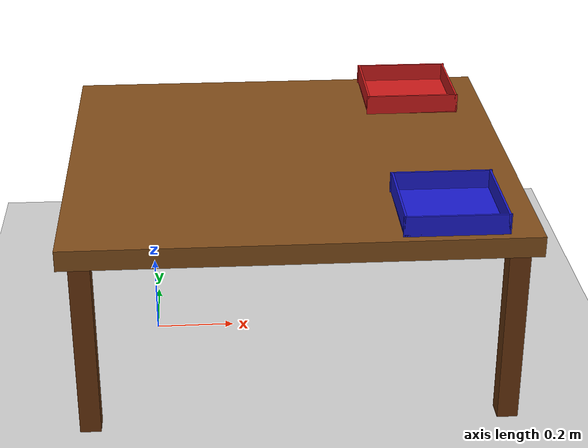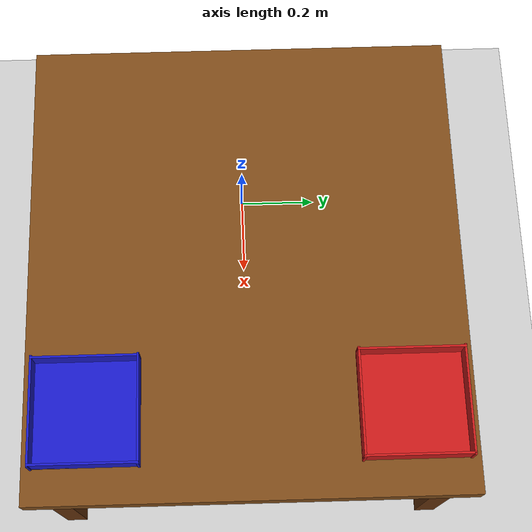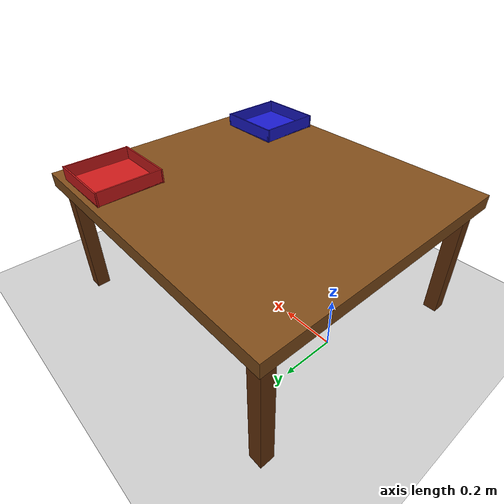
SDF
<?xml version="1.0"?>
<sdf version="1.8">
  <world name="sorting_cell">

    <!-- physics type = ignored could have prevented the gripper instability issue as it would have default to
    dart-->
    <!-- Readymade world already used bullet featherstone and it was a blunder not to change it to
    dart -->
    <!-- refer /sorting_arm_ws/docs/rca/gripper-grasp-instability.md-->

    <physics name="1ms" type="dart">
      <max_step_size>0.001</max_step_size>
      <real_time_factor>1.0</real_time_factor>
    </physics>

    <plugin filename="gz-sim-physics-system" name="gz::sim::systems::Physics" />
    <plugin filename="gz-sim-user-commands-system" name="gz::sim::systems::UserCommands" />
    <plugin filename="gz-sim-scene-broadcaster-system" name="gz::sim::systems::SceneBroadcaster" />
    <plugin filename="gz-sim-contact-system" name="gz::sim::systems::Contact" />
    <plugin filename="gz-sim-sensors-system" name="gz::sim::systems::Sensors">
      <render_engine>ogre2</render_engine>
    </plugin>

    <light name="sun" type="directional">
      <cast_shadows>true</cast_shadows>
      <pose>0 0 10 0 0 0</pose>
      <diffuse>0.8 0.8 0.8 1</diffuse>
      <specular>0.2 0.2 0.2 1</specular>
      <direction>-0.5 -1 -1</direction>
    </light>

    <model name="ground_plane">
      <static>true</static>
      <pose>0 0 0 0 0 0</pose>
      <link name="ground_link">
        <collision name="ground_collision">
          <geometry>
            <plane>
              <size>100 100</size>
              <normal>0 0 1</normal>
            </plane>
          </geometry>
        </collision>
        <visual name="ground_visual">
          <geometry>
            <plane>
              <size>100 100</size>
              <normal>0 0 1</normal>
            </plane>
          </geometry>
          <material>
            <ambient>0.8 0.8 0.8 1</ambient>
            <diffuse>0.8 0.8 0.8 1</diffuse>
          </material>
        </visual>
      </link>
    </model>

    <model name="table">
      <static>true</static>
      <pose>0.35 0 0.505 0 0 0</pose>
      <link name="table_link">
        <collision name="top_collision">
          <pose>0 0 -0.030 0 0 0</pose>
          <geometry>
            <box>
              <size>1.10 1.00 0.05</size>
            </box>
          </geometry>
        </collision>
        <visual name="top_visual">
          <pose>0 0 -0.030 0 0 0</pose>
          <geometry>
            <box>
              <size>1.10 1.00 0.05</size>
            </box>
          </geometry>
          <material>
            <ambient>0.5 0.3 0.1 1</ambient>
            <diffuse>0.5 0.3 0.1 1</diffuse>
          </material>
        </visual>

        <collision name="leg_fl_collision">
          <pose>0.50 0.45 -0.280 0 0 0</pose>
          <geometry>
            <box>
              <size>0.05 0.05 0.45</size>
            </box>
          </geometry>
        </collision>
        <visual name="leg_fl_visual">
          <pose>0.50 0.45 -0.280 0 0 0</pose>
          <geometry>
            <box>
              <size>0.05 0.05 0.45</size>
            </box>
          </geometry>
          <material>
            <ambient>0.4 0.2 0.05 1</ambient>
            <diffuse>0.4 0.2 0.05 1</diffuse>
          </material>
        </visual>

        <collision name="leg_fr_collision">
          <pose>0.50 -0.45 -0.280 0 0 0</pose>
          <geometry>
            <box>
              <size>0.05 0.05 0.45</size>
            </box>
          </geometry>
        </collision>
        <visual name="leg_fr_visual">
          <pose>0.50 -0.45 -0.280 0 0 0</pose>
          <geometry>
            <box>
              <size>0.05 0.05 0.45</size>
            </box>
          </geometry>
          <material>
            <ambient>0.4 0.2 0.05 1</ambient>
            <diffuse>0.4 0.2 0.05 1</diffuse>
          </material>
        </visual>

        <collision name="leg_bl_collision">
          <pose>-0.50 0.45 -0.280 0 0 0</pose>
          <geometry>
            <box>
              <size>0.05 0.05 0.45</size>
            </box>
          </geometry>
        </collision>
        <visual name="leg_bl_visual">
          <pose>-0.50 0.45 -0.280 0 0 0</pose>
          <geometry>
            <box>
              <size>0.05 0.05 0.45</size>
            </box>
          </geometry>
          <material>
            <ambient>0.4 0.2 0.05 1</ambient>
            <diffuse>0.4 0.2 0.05 1</diffuse>
          </material>
        </visual>

        <collision name="leg_br_collision">
          <pose>-0.50 -0.45 -0.280 0 0 0</pose>
          <geometry>
            <box>
              <size>0.05 0.05 0.45</size>
            </box>
          </geometry>
        </collision>
        <visual name="leg_br_visual">
          <pose>-0.50 -0.45 -0.280 0 0 0</pose>
          <geometry>
            <box>
              <size>0.05 0.05 0.45</size>
            </box>
          </geometry>
          <material>
            <ambient>0.4 0.2 0.05 1</ambient>
            <diffuse>0.4 0.2 0.05 1</diffuse>
          </material>
        </visual>
      </link>
    </model>

    <!-- Keep these fixed fixtures identical to SceneManager's MoveIt collision objects. -->
    <model name="red_tray">
      <static>true</static>
      <pose>0.70 0.36 0.500 0 0 0</pose>
      <link name="tray_link">
        <collision name="floor_collision">
          <pose>0 0 0.0025 0 0 0</pose>
          <geometry>
            <box>
              <size>0.24 0.24 0.005</size>
            </box>
          </geometry>
        </collision>
        <visual name="floor_visual">
          <pose>0 0 0.0025 0 0 0</pose>
          <geometry>
            <box>
              <size>0.24 0.24 0.005</size>
            </box>
          </geometry>
          <material>
            <ambient>0.8 0.1 0.1 1</ambient>
            <diffuse>0.8 0.1 0.1 1</diffuse>
          </material>
        </visual>

        <collision name="wall_front_collision">
          <pose>0.1175 0 0.025 0 0 0</pose>
          <geometry>
            <box>
              <size>0.005 0.24 0.05</size>
            </box>
          </geometry>
        </collision>
        <visual name="wall_front_visual">
          <pose>0.1175 0 0.025 0 0 0</pose>
          <geometry>
            <box>
              <size>0.005 0.24 0.05</size>
            </box>
          </geometry>
          <material>
            <ambient>0.8 0.1 0.1 1</ambient>
            <diffuse>0.8 0.1 0.1 1</diffuse>
          </material>
        </visual>

        <collision name="wall_back_collision">
          <pose>-0.1175 0 0.025 0 0 0</pose>
          <geometry>
            <box>
              <size>0.005 0.24 0.05</size>
            </box>
          </geometry>
        </collision>
        <visual name="wall_back_visual">
          <pose>-0.1175 0 0.025 0 0 0</pose>
          <geometry>
            <box>
              <size>0.005 0.24 0.05</size>
            </box>
          </geometry>
          <material>
            <ambient>0.8 0.1 0.1 1</ambient>
            <diffuse>0.8 0.1 0.1 1</diffuse>
          </material>
        </visual>

        <collision name="wall_left_collision">
          <pose>0 0.1175 0.025 0 0 0</pose>
          <geometry>
            <box>
              <size>0.245 0.005 0.05</size>
            </box>
          </geometry>
        </collision>
        <visual name="wall_left_visual">
          <pose>0 0.1175 0.025 0 0 0</pose>
          <geometry>
            <box>
              <size>0.245 0.005 0.05</size>
            </box>
          </geometry>
          <material>
            <ambient>0.8 0.1 0.1 1</ambient>
            <diffuse>0.8 0.1 0.1 1</diffuse>
          </material>
        </visual>

        <collision name="wall_right_collision">
          <pose>0 -0.1175 0.025 0 0 0</pose>
          <geometry>
            <box>
              <size>0.245 0.005 0.05</size>
            </box>
          </geometry>
        </collision>
        <visual name="wall_right_visual">
          <pose>0 -0.1175 0.025 0 0 0</pose>
          <geometry>
            <box>
              <size>0.245 0.005 0.05</size>
            </box>
          </geometry>
          <material>
            <ambient>0.8 0.1 0.1 1</ambient>
            <diffuse>0.8 0.1 0.1 1</diffuse>
          </material>
        </visual>
      </link>
    </model>

    <model name="blue_tray">
      <static>true</static>
      <pose>0.70 -0.36 0.500 0 0 0</pose>
      <link name="tray_link">
        <collision name="floor_collision">
          <pose>0 0 0.0025 0 0 0</pose>
          <geometry>
            <box>
              <size>0.24 0.24 0.005</size>
            </box>
          </geometry>
        </collision>
        <visual name="floor_visual">
          <pose>0 0 0.0025 0 0 0</pose>
          <geometry>
            <box>
              <size>0.24 0.24 0.005</size>
            </box>
          </geometry>
          <material>
            <ambient>0.1 0.1 0.8 1</ambient>
            <diffuse>0.1 0.1 0.8 1</diffuse>
          </material>
        </visual>

        <collision name="wall_front_collision">
          <pose>0.1175 0 0.025 0 0 0</pose>
          <geometry>
            <box>
              <size>0.005 0.24 0.05</size>
            </box>
          </geometry>
        </collision>
        <visual name="wall_front_visual">
          <pose>0.1175 0 0.025 0 0 0</pose>
          <geometry>
            <box>
              <size>0.005 0.24 0.05</size>
            </box>
          </geometry>
          <material>
            <ambient>0.1 0.1 0.8 1</ambient>
            <diffuse>0.1 0.1 0.8 1</diffuse>
          </material>
        </visual>

        <collision name="wall_back_collision">
          <pose>-0.1175 0 0.025 0 0 0</pose>
          <geometry>
            <box>
              <size>0.005 0.24 0.05</size>
            </box>
          </geometry>
        </collision>
        <visual name="wall_back_visual">
          <pose>-0.1175 0 0.025 0 0 0</pose>
          <geometry>
            <box>
              <size>0.005 0.24 0.05</size>
            </box>
          </geometry>
          <material>
            <ambient>0.1 0.1 0.8 1</ambient>
            <diffuse>0.1 0.1 0.8 1</diffuse>
          </material>
        </visual>

        <collision name="wall_left_collision">
          <pose>0 0.1175 0.025 0 0 0</pose>
          <geometry>
            <box>
              <size>0.245 0.005 0.05</size>
            </box>
          </geometry>
        </collision>
        <visual name="wall_left_visual">
          <pose>0 0.1175 0.025 0 0 0</pose>
          <geometry>
            <box>
              <size>0.245 0.005 0.05</size>
            </box>
          </geometry>
          <material>
            <ambient>0.1 0.1 0.8 1</ambient>
            <diffuse>0.1 0.1 0.8 1</diffuse>
          </material>
        </visual>

        <collision name="wall_right_collision">
          <pose>0 -0.1175 0.025 0 0 0</pose>
          <geometry>
            <box>
              <size>0.245 0.005 0.05</size>
            </box>
          </geometry>
        </collision>
        <visual name="wall_right_visual">
          <pose>0 -0.1175 0.025 0 0 0</pose>
          <geometry>
            <box>
              <size>0.245 0.005 0.05</size>
            </box>
          </geometry>
          <material>
            <ambient>0.1 0.1 0.8 1</ambient>
            <diffuse>0.1 0.1 0.8 1</diffuse>
          </material>
        </visual>
      </link>
    </model>
  </world>
</sdf>
